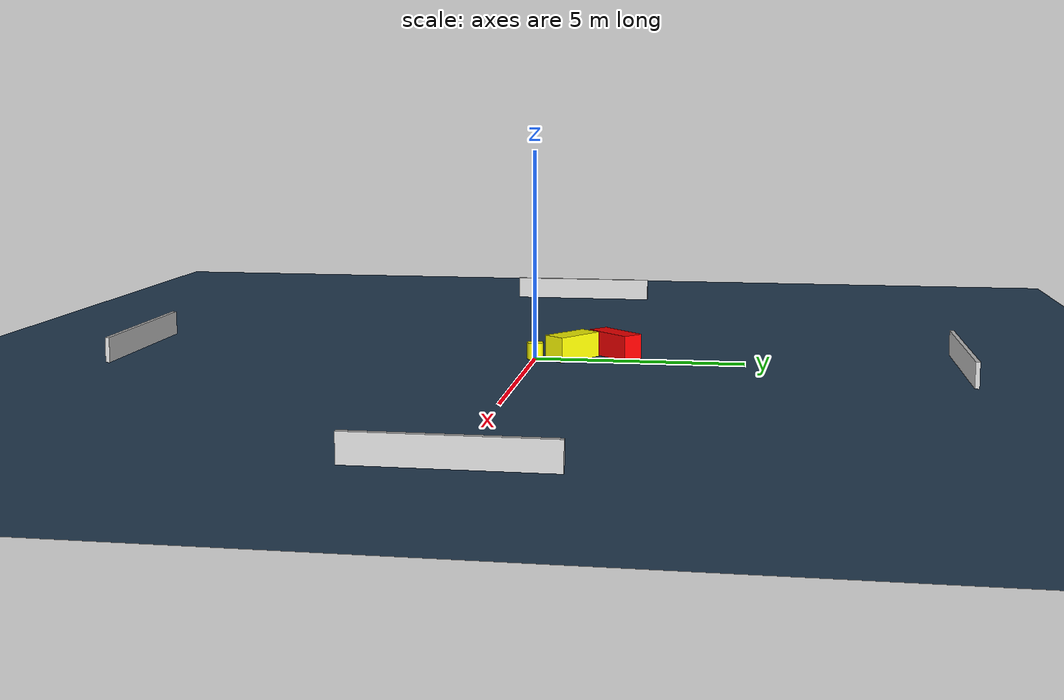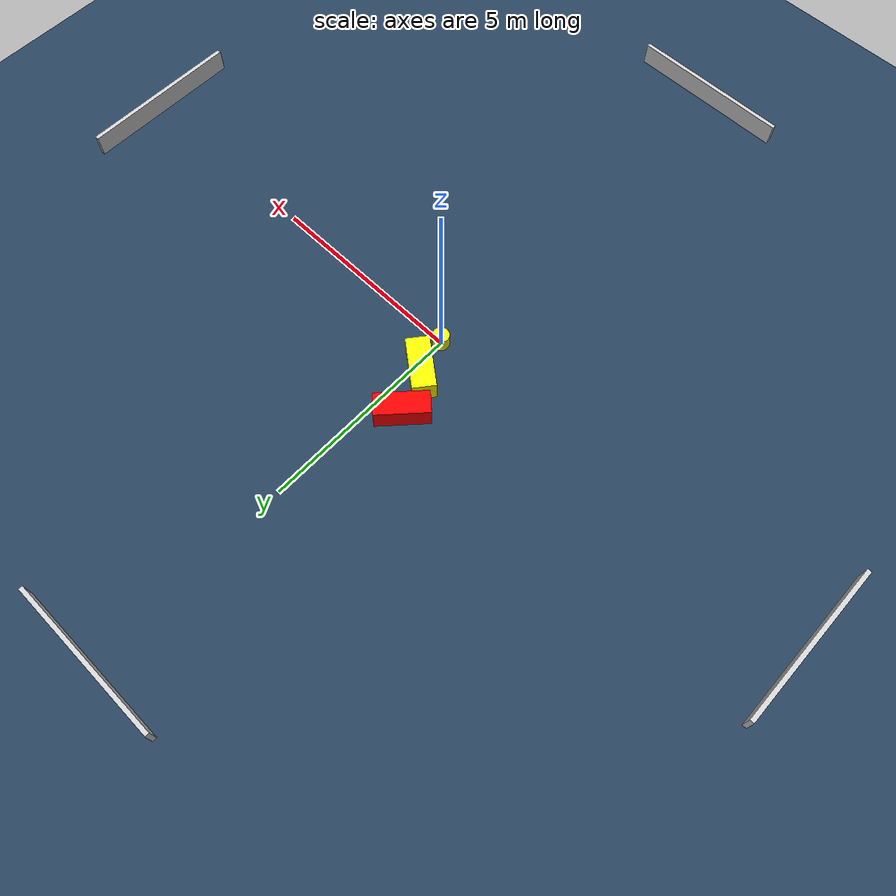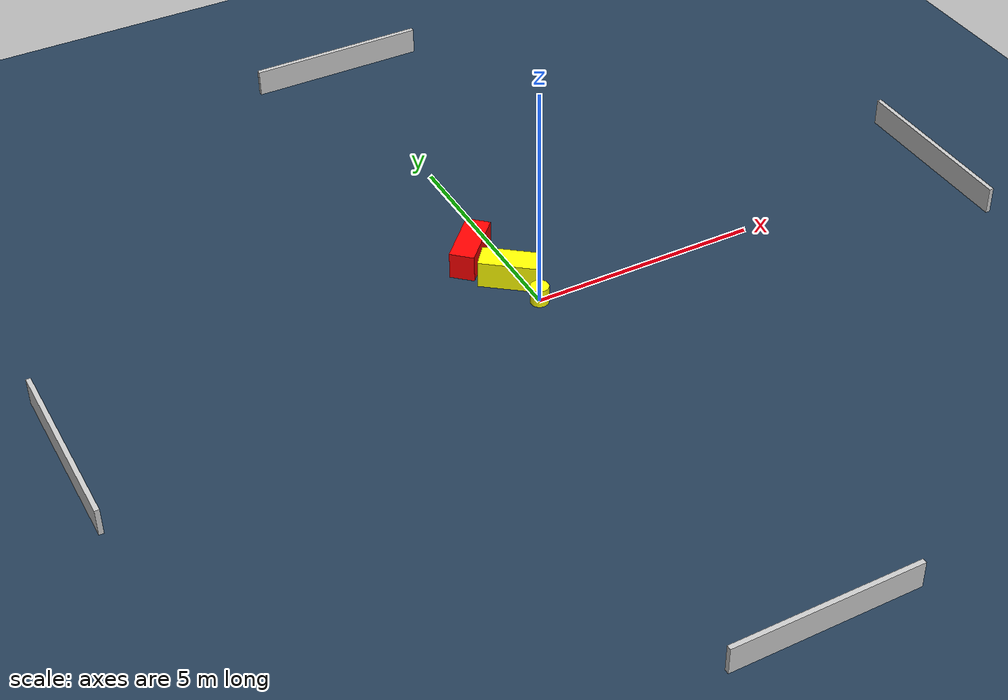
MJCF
<?xml version="1.0" ?>
<mujoco model="generated_environment">
  <option timestep="0.01" integrator="RK4" cone="elliptic"/>
  <default>
    <geom density="1"/>
  </default>
  <asset>
    <texture builtin="gradient" height="3072" name="skybox" rgb1="0.3 0.5 0.7" rgb2="0 0 0" type="skybox" width="512"/>
    <texture builtin="checker" height="300" name="groundplane" rgb1="0.2 0.3 0.4" rgb2="0.1 0.2 0.3" type="2d" width="300"/>
    <material name="groundplane" reflectance="0.2" texrepeat="5 5" texture="groundplane"/>
  </asset>
  <worldbody>
    <light dir="0 0 -1" directional="true" pos="0 0 1.5"/>
    <geom condim="3" friction="0.5 0.005 0.001" material="groundplane" name="floor" pos="0 0 0" size="0 0 0.05" type="plane"/>
    <body name="walls">
      <geom name="wall_1" condim="4" pos="-10.0 0.0 0.3" rgba="0.800000011920929 0.800000011920929 0.800000011920929 1.0" size="0.05 2.0 0.3" type="box"/>
      <geom name="wall_2" condim="4" pos="10.0 0.0 0.3" rgba="0.800000011920929 0.800000011920929 0.800000011920929 1.0" size="0.05 2.0 0.3" type="box"/>
      <geom name="wall_3" condim="4" pos="0.0 -10.0 0.3" rgba="0.800000011920929 0.800000011920929 0.800000011920929 1.0" size="2.0 0.05 0.3" type="box"/>
      <geom name="wall_4" condim="4" pos="0.0 10.0 0.3" rgba="0.800000011920929 0.800000011920929 0.800000011920929 1.0" size="2.0 0.05 0.3" type="box"/>
    </body>
    <body name="robot">
      <joint name="joint_x" type="slide" pos="0 0 0" axis="1 0 0"/>
      <joint name="joint_y" type="slide" pos="0 0 0" axis="0 1 0"/>
      <geom name="robot" type="cylinder" pos="0.0 0.0 0.2" size="0.2 0.2 0.0" mass="5.0" friction="1.0 0.005 0.0001" condim="4" rgba="1.0 1.0 0.0 1.0"/>
    </body>
    <body name="obstacle_1_movable">
      <geom name="obstacle_1_movable" condim="4" pos="-0.21547381036738944 0.8771861579814214 0.3" euler="0 0 231.61820339160064" friction="0.0 0.005 0.001" rgba="1.0 1.0 0.0 1.0" size="0.2795262815097488 0.6253728736491385 0.3" type="box" mass="0.1"/>
      <joint type="free"/>
    </body>
    <body name="obstacle_2_static">
      <geom name="obstacle_2_static" condim="4" pos="-0.6158260874871986 1.8797043202372588 0.3" euler="0 0 316.8617803008847" friction="0.0 0.005 0.001" rgba="1.0 0.0 0.0 1.0" size="0.26759412453061654 0.6398244839921803 0.3" type="box"/>
    </body>
  </worldbody>
  <actuator>
    <motor name="actuator_x" joint="joint_x" gear="1" ctrlrange="-1 1"/>
    <motor name="actuator_y" joint="joint_y" gear="1" ctrlrange="-1 1"/>
  </actuator>
</mujoco>
